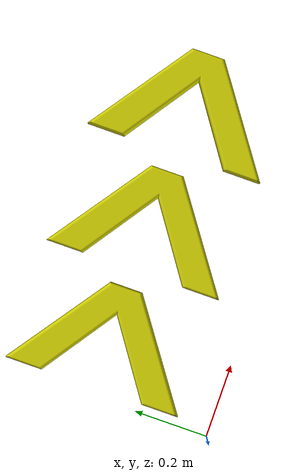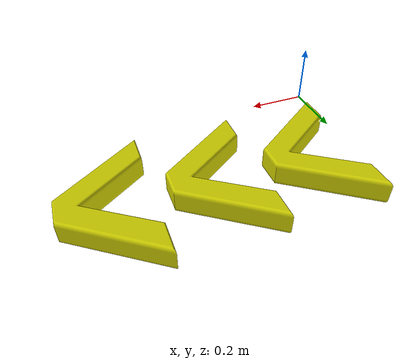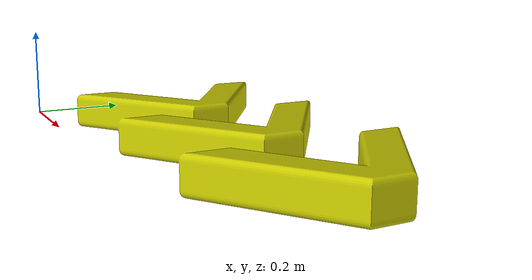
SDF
<?xml version="1.0" ?>
<sdf version='1.5'>
<model name='arrow_yellow'>
<static>true</static>
<link name="link">
   <pose frame=''>0 0 0 0 0 0</pose>
  <visual name='visual'>
    <cast_shadows>false</cast_shadows>
    <geometry>
      <mesh>
        <scale>1.0 1.0 1.0</scale>
        <uri>model://arrow_yellow/untitled.dae</uri>
      </mesh>
    </geometry>
  </visual>
</link>
</model>
</sdf>
